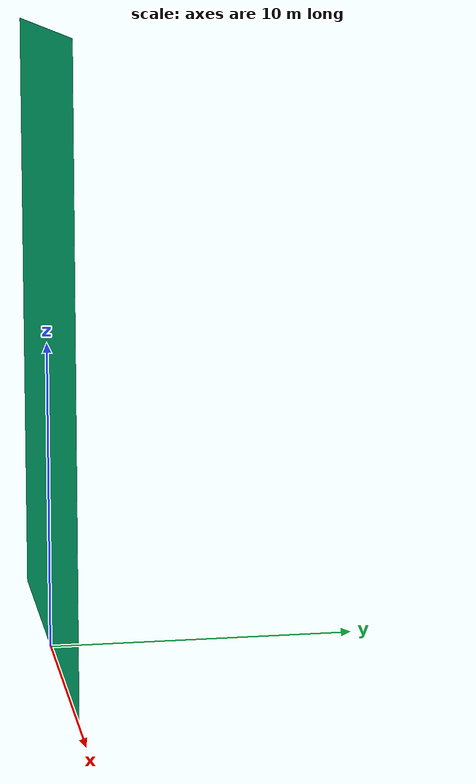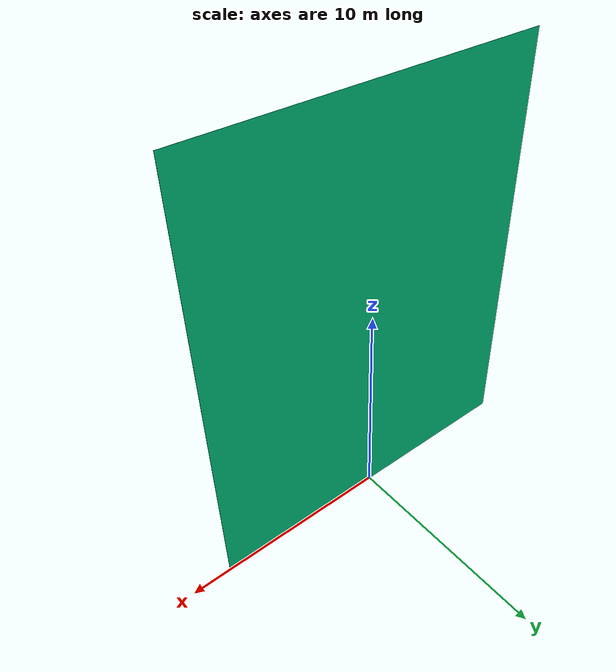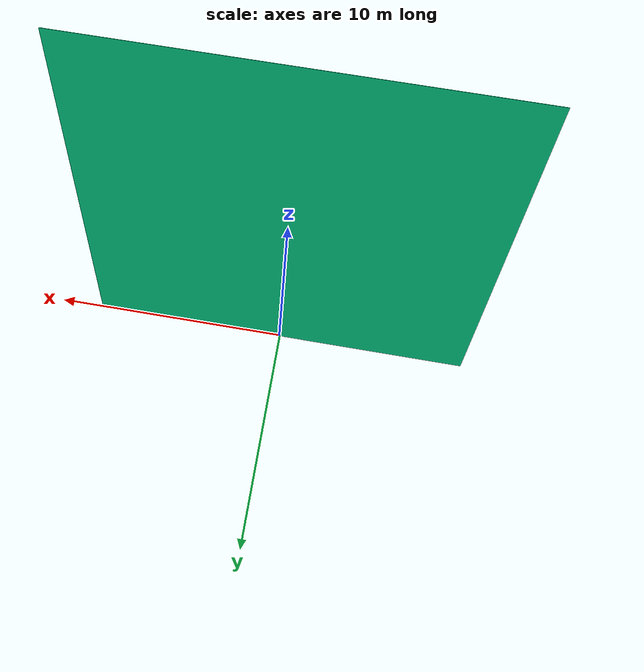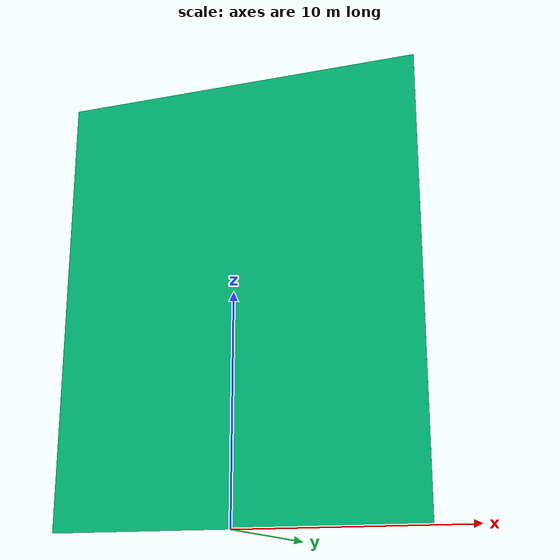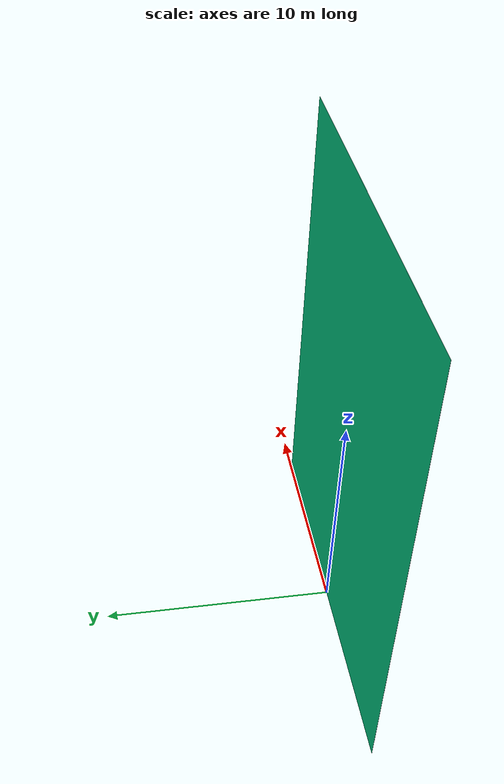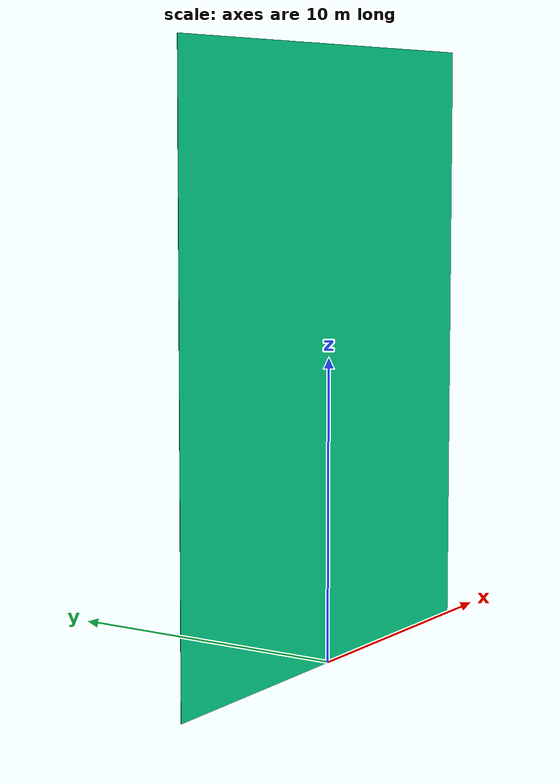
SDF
<?xml version="1.0" ?>
<sdf version="1.5">
    <model name="Parede Lisa">
        <static>true</static>
        <link name="link">
            <pose>0 0 0 0 0 0</pose>
            <collision name="collision">
                <geometry>
                    <mesh>
                        <uri>model://parede_lisa/Parede_lisa.dae</uri>
                    </mesh>
                </geometry>
            </collision>
            <visual name="visual">
                <geometry>
                    <mesh>
                        <uri>model://parede_lisa/Parede_lisa.dae</uri>
                    </mesh>
                </geometry>
                <surface>
                    <contact>
                        <collide_bitmask>0xffff</collide_bitmask>
                    </contact>
                </surface>
            </visual>
        </link>
    </model>
</sdf>
